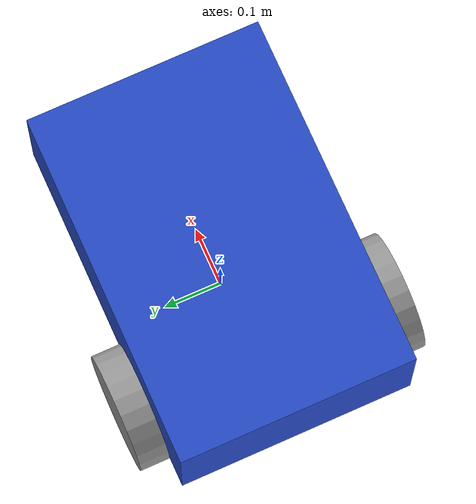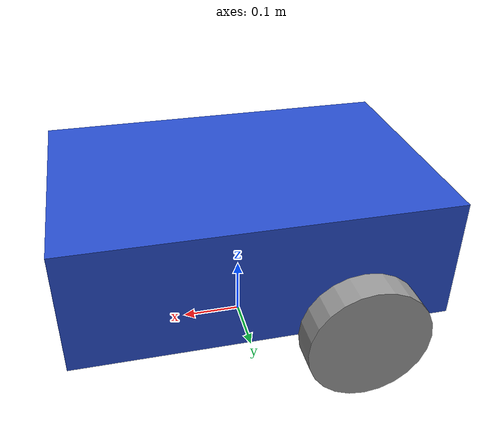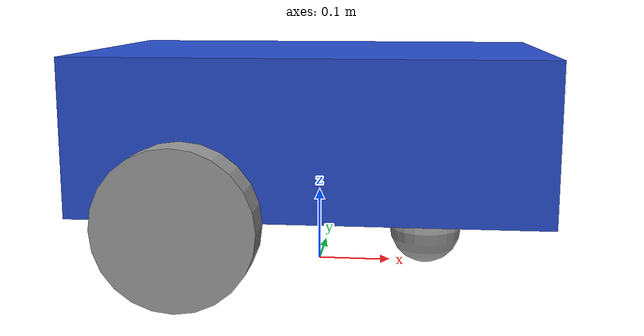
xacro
<?xml version="1.0"?>
<robot xmlns:xacro="http://www.ros.org/wiki/xacro">

    <!-- 1. ROBOT DIMENSIONS AND PARAMETERS
      Defines physical sizes, radii, and widths as reusable variables. -->
    <xacro:property name="base_length" value="0.6"/>
    <xacro:property name="base_width" value="0.4" />
    <xacro:property name="base_height" value="0.2" />
    <xacro:property name="wheel_radius" value="0.1" />
    <xacro:property name="wheel_length" value="0.05" />

    <!-- 2. GROUND REFERENCE LINK
      An empty, weightless link sitting directly on the floor for navigation tracking. -->
    <link name="base_footprint_link"/>

    <!-- 3. MAIN ROBOT CHASSIS BODY
      Defines the physical box body, its material color, collisions, and mass weight. -->
    <link name="base_link">
        <visual>
            <geometry>
                <box size="${base_length} ${base_width} ${base_height}" />
            </geometry>
            <origin xyz="0 0 ${wheel_radius}" rpy="0 0 0" />

            <material name="blue" />
        </visual>

        <collision>
            <geometry>
                <box size="${base_length} ${base_width} ${base_height}" />
            </geometry>
            <origin xyz="0 0 ${wheel_radius}" rpy="0 0 0" />
        </collision>

        <xacro:box_inertia m="5.0" x="${base_length}" y="${base_width}" z="${base_height}"
                           o_xyz="0 0 ${wheel_radius}" o_rpy="0 0 0"/>

    </link>

    <!-- 4. REUSABLE WHEEL CREATOR TEMPLATE
      A macro that automatically builds uniform wheel cylinders with spherical collision envelopes. -->
    <xacro:macro name="wheel_link" params="prefix">
        <link name="${prefix}_wheel_link">
            <visual>
                <geometry>
                    <cylinder radius="${wheel_radius}" length="${wheel_length}" />
                </geometry>
                <origin xyz="0 0 0" rpy="${pi / 2.0} 0 0" />

                <material name="grey" />
            </visual>

            <collision>
                <geometry>
                    <sphere radius="${wheel_radius}"/>
                </geometry>
                <origin xyz="0 0 0" rpy="0 0 0"/>
            </collision>

            <xacro:cylinder_inertia m="1.0" h="${wheel_length}" r="${wheel_radius}"
                                o_xyz="0 0 0" o_rpy="${pi / 2.0} 0 0"/>

        </link>
    </xacro:macro>

    <!-- 5. INSTANTIATE WHEELS
      Uses the macro block above to generate distinct left and right wheel segments. -->
    <xacro:wheel_link prefix="right"/>
    <xacro:wheel_link prefix="left"/>

    <!-- 6. CASTER WHEEL PHYSICAL MESH
      Defines a spherical front support wheel to balance out the chassis frame. -->
    <link name="caster_wheel_link">
        <visual>
            <geometry>
                <sphere radius="${wheel_radius / 2.0}"/>
            </geometry>
            <origin xyz="0 0 0" rpy="0 0 0"/>

            <material name="grey"/>
        </visual>

        <collision>
            <geometry>
                <sphere radius="${wheel_radius / 2.0}"/>
            </geometry>
            <origin xyz="0 0 0" rpy="0 0 0"/>
        </collision>

        <xacro:sphere_inertia m="0.5" r="${wheel_radius / 2.0}"
                                o_xyz="0 0 0" o_rpy="${pi / 2.0} 0 0"/>
    </link>

    <!-- 7. ACTUATED DRIVE WHEEL JOINTS
      Connects the drive wheels to the chassis with a rotating axis running sideways (Y-axis). -->
    <joint name="base_right_wheel_joint" type="continuous">
        <parent link="base_link"/>
        <child link="right_wheel_link"/>
        <origin xyz="${- base_length / 4.0} ${- base_width / 2.0 - wheel_length / 2.0} 0" rpy="0 0 0"/>
        <axis xyz="0 1 0"/>
    </joint>

    <joint name="base_left_wheel_joint" type="continuous">
        <parent link="base_link"/>
        <child link="left_wheel_link"/>
        <origin xyz="${- base_length / 4.0} ${base_width / 2.0 + wheel_length / 2.0} 0" rpy="0 0 0"/>
        <axis xyz="0 1 0"/>
    </joint>

    <!-- 8. BALANCING FRONT SUPPORT JOINT
      Connects the caster rigidly (fixed) to the front chassis to eliminate bouncy simulation artifacts. -->
    <joint name="base_caster_wheel_joint" type="fixed">
        <parent link="base_link"/>
        <child link="caster_wheel_link"/>
        <origin xyz="${base_length / 4.0} 0 ${- wheel_radius / 2.0}" rpy="0 0 0"/>
    </joint>

    <!-- 9. CHASSIS ATTACHMENT JOINT
      Locks the main chassis assembly vertically onto your baseline footprint framework. -->
    <joint name="base_footprint_joint" type="fixed">
        <parent link="base_footprint_link"/>
        <child link="base_link"/>
        <origin xyz="0 0 ${wheel_radius}" rpy="0 0 0"/>
    </joint>

</robot>
